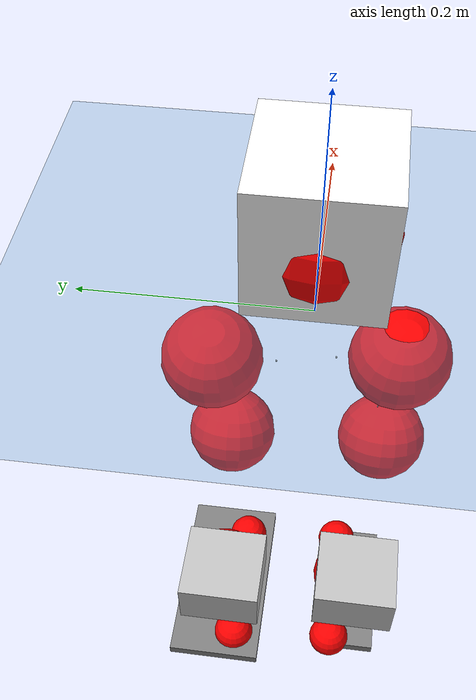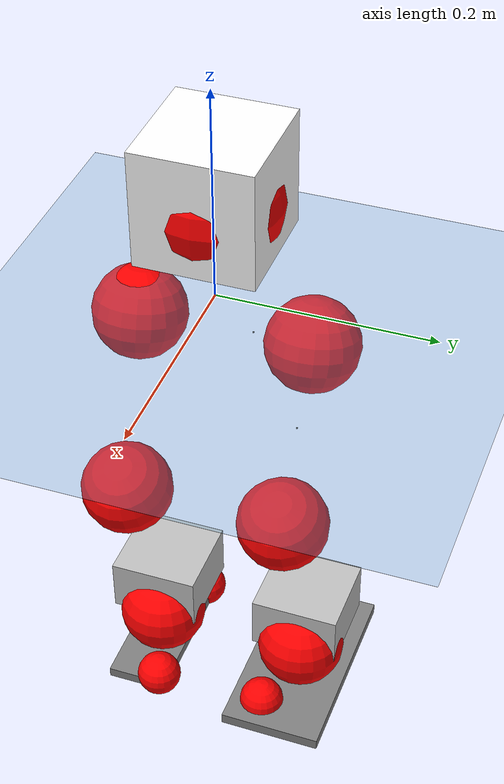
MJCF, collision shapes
<mujoco model="pi_12dof_release_v1">
  <compiler angle="radian" assetdir="assets" balanceinertia="true" inertiafromgeom="false"/>

  <option timestep="0.005" density="1.2" viscosity="2e-05"/>

  <size nkey="1"/>

  <visual>
    <quality shadowsize="8192"/>
    <map shadowclip="0.5"/>
  </visual>

  <default>
    <default class="/">
      <joint armature="0.01" damping="0.01" frictionloss="0.01"/>
      <geom contype="0" conaffinity="0" group="1" solref="-1000 -80"/>
      <site size="0.01 0.005 0.005" group="5"/>
      <general forcelimited="true" biastype="affine" gainprm="20" biasprm="0 -20 -0.5"/>
      <default class="foot">
        <geom size="0.0845 0.036 0.005" type="box" condim="6" group="4" priority="1" friction="0.9 0.2 0.2" solimp="0.015 1 0.005"/>
      </default>
      <default class="reward_collision_sphere">
        <geom group="5" rgba="1 0 0 1"/>
      </default>
    </default>
  </default>

  <asset>
    <texture type="skybox" colorspace="auto" name="//unnamed_texture_0" builtin="gradient" rgb1="0.95 0.95 0.95" rgb2="0.95 0.95 0.95" width="100" height="600"/>
    <texture type="2d" colorspace="auto" name="texplane" builtin="checker" rgb1="0.345 0.575 0.748" rgb2="0.345 0.575 0.748" markrgb="1 1 1" width="512" height="512"/>
    <material name="MatPlane" class="/" texture="texplane" texuniform="true" texrepeat="2 2" specular="0.9"/>
    <mesh name="baselink_1" class="/" file="baselink_1.STL"/>
    <mesh name="r_hip_pitch_link" class="/" file="r_hip_pitch_link.STL"/>
    <mesh name="r_hip_roll_link" class="/" file="r_hip_roll_link.STL"/>
    <mesh name="r_thigh_link" class="/" file="r_thigh_link.STL"/>
    <mesh name="r_calf_link" class="/" file="r_calf_link.STL"/>
    <mesh name="r_ankle_pitch_link" class="/" file="r_ankle_pitch_link.STL"/>
    <mesh name="r_ankle_roll_link" class="/" file="r_ankle_roll_link.STL"/>
    <mesh name="l_hip_pitch_link" class="/" file="l_hip_pitch_link.STL"/>
    <mesh name="l_hip_roll_link" class="/" file="l_hip_roll_link.STL"/>
    <mesh name="l_thigh_link" class="/" file="l_thigh_link.STL"/>
    <mesh name="l_calf_link" class="/" file="l_calf_link.STL"/>
    <mesh name="l_ankle_pitch_link" class="/" file="l_ankle_pitch_link.STL"/>
    <mesh name="l_ankle_roll_link" class="/" file="l_ankle_roll_link.STL"/>
  </asset>

  <worldbody>
    <geom name="floor" class="/" size="100 100 0.125" type="plane" group="0" material="MatPlane"/>
    <light name="toplight_shadow" class="/" pos="0 0 5" dir="0.0990148 0.0990148 -0.990148" type="directional" ambient="0.04 0.04 0.04" diffuse="0.55 0.55 0.55" specular="0.12 0.12 0.12"/>
    <light name="toplight_fill" class="/" pos="0 0 5" dir="0.0990148 0.0990148 -0.990148" type="directional" castshadow="false" ambient="0.04 0.04 0.04" diffuse="0.3 0.3 0.3" specular="0.08 0.08 0.08"/>
    <body name="trunk" pos="-0.00688084 -0.000594271 -0.00201311" quat="1 0.000378705 -0.000331947 9.75983e-05">
      <inertial pos="0.00279454 -0.00345438 0.0531267" quat="0.698127 -0.000258287 0.00640695 0.715945" mass="2.86948" diaginertia="0.00716913 0.0071479 0.0168299"/>
      <joint name="//unnamed_joint_0" type="free"/>
      <geom name="//unnamed_geom_1" class="/" type="mesh" density="0" rgba="1 1 1 1" mesh="baselink_1"/>
      <geom name="//unnamed_geom_2" class="/" size="0.0546051 0.0546051 0.0546051" pos="0 0 0.106163" type="box" rgba="1 1 1 1"/>
      <geom name="//unnamed_geom_3" class="reward_collision_sphere" size="0.0600656" pos="0 0 0.0928931"/>
      <site name="imu" class="/" pos="0.00348064 -0.00950172 0.0417689" size="0.010921"/>
      <camera name="track" class="/" pos="0 -1.95516 0" quat="0.707107 0.707107 0 0" mode="trackcom"/>
      <camera name="ego_camera" class="/" pos="0.0728759 0 0.238868" quat="-0.5 -0.5 0.5 0.5"/>
      <body name="r_hip_pitch_link" pos="-0.00213014 -0.0208638 -0.0409061" quat="0.99218 0.00167762 -0.124777 -0.00248405">
        <inertial pos="0.00869297 -0.0535177 0.000202543" quat="-0.018126 0.706076 -0.02738 0.707375" mass="0.464139" diaginertia="9.04598e-05 9.03874e-05 0.000326352"/>
        <joint name="r_hip_pitch_joint" class="/" pos="0 0 0" axis="-0.0285497 -0.999592 0.000913756" range="-1.90376 1.17568" armature="0.0109756" damping="0" frictionloss="0.0107185"/>
        <geom name="//unnamed_geom_4" class="/" type="mesh" density="0" rgba="0.75294 0.75294 0.75294 1" mesh="r_hip_pitch_link"/>
        <geom name="//unnamed_geom_5" class="/" size="0.000546051 0.000546051 0.000546051" type="box" rgba="0.75294 0.75294 0.75294 1"/>
        <body name="r_hip_roll_link" pos="0.00369294 -0.0530178 0.00263858" quat="1 -9.71664e-05 0.000480461 -5.35061e-05">
          <inertial pos="-0.000703622 0.000440634 -0.07187" quat="0.707706 -0.0825099 -0.0763548 0.697506" mass="0.518208" diaginertia="0.000295194 0.00024753 0.000518799"/>
          <joint name="r_hip_roll_joint" class="/" pos="0 0 0" axis="-0.99957 -0.0217842 -0.0196352" range="-0.0767804 0.363504" armature="0.0102609" damping="0.0164161" frictionloss="0.0133438"/>
          <geom name="//unnamed_geom_6" class="/" type="mesh" density="0" rgba="0.75294 0.75294 0.75294 1" mesh="r_hip_roll_link"/>
          <geom name="//unnamed_geom_7" class="/" size="0.000546051 0.000546051 0.000546051" type="box" rgba="0.75294 0.75294 0.75294 1"/>
          <geom name="//unnamed_geom_8" class="reward_collision_sphere" size="0.043684"/>
          <body name="r_thigh_link" pos="-0.00285247 0.00942616 -0.0910455" quat="0.999998 -0.00012914 2.61801e-05 0.00217782">
            <inertial pos="-0.00153334 -0.000171688 -0.0624888" quat="0.760625 0.649002 0.0102148 -0.0118858" mass="0.135969" diaginertia="0.000110547 8.15505e-05 0.000246776"/>
            <joint name="r_thigh_joint" class="/" pos="0 0 0" axis="-0.00553683 0.0118772 -0.999914" stiffness="0.0429548" range="-0.388268 0.429687" armature="0.0111412" damping="0.0114243" frictionloss="0.0116989"/>
            <geom name="//unnamed_geom_9" class="/" type="mesh" density="0" rgba="0.75294 0.75294 0.75294 1" mesh="r_thigh_link"/>
            <geom name="//unnamed_geom_10" class="/" size="0.000546051 0.000546051 0.000546051" type="box" rgba="0.75294 0.75294 0.75294 1"/>
            <body name="r_calf_link" pos="0.00895808 -0.0112176 -0.0874393" quat="0.947653 7.48901e-05 0.319301 -0.00114407">
              <inertial pos="-0.00886782 -0.0002268 -0.0850918" quat="0.999933 0.010937 0.003621 -0.00097948" mass="0.974807" diaginertia="0.00267497 0.0029366 0.000649302"/>
              <joint name="r_calf_joint" class="/" pos="0 0 0" axis="0.0388389 -0.999232 -0.00527491" stiffness="0.00887452" range="-1.69375 0.655809" armature="0.00995908" damping="0" frictionloss="0.00998134"/>
              <geom name="//unnamed_geom_11" class="/" type="mesh" density="0" rgba="0.75294 0.75294 0.75294 1" mesh="r_calf_link"/>
              <geom name="//unnamed_geom_12" class="/" size="0.000546051 0.000546051 0.000546051" type="box" rgba="0.75294 0.75294 0.75294 1"/>
              <geom name="//unnamed_geom_13" class="reward_collision_sphere" size="0.043684"/>
              <body name="r_ankle_pitch_link" pos="0.00106531 0.00539669 -0.188869" quat="0.980065 7.29253e-05 -0.198677 9.60802e-05">
                <inertial pos="0.00653641 -0.00631641 0.000595342" quat="0.00358387 0.708155 -0.000115959 0.706048" mass="0.228742" diaginertia="0.000263274 0.000202511 0.00049375"/>
                <joint name="r_ankle_pitch_joint" class="/" pos="0 0 0" axis="-0.00991028 -0.999838 0.0150369" range="-1.31847 0.492161" armature="0.0139421" damping="0.00143624" frictionloss="0.0132795"/>
                <geom name="//unnamed_geom_14" class="/" type="mesh" density="0" rgba="0.75294 0.75294 0.75294 1" mesh="r_ankle_pitch_link"/>
                <geom name="//unnamed_geom_15" class="/" size="0.0425919 0.043684 0.0273025" type="box" rgba="0.75294 0.75294 0.75294 1"/>
                <body name="r_ankle_roll_link" pos="0.0750859 0.00332585 -0.00624066" quat="0.999991 -0.00191624 0.00356271 0.00159072">
                  <inertial pos="-0.0330055 0.00381101 -0.025136" quat="0.558026 0.430631 0.429032 0.564886" mass="0.709946" diaginertia="0.000934742 0.000828997 0.00101517"/>
                  <joint name="r_ankle_roll_joint" class="/" pos="0 0 0" axis="-0.99903 0.0297428 0.0324758" stiffness="0.0149642" range="-0.14585 0.117003" armature="0.0113754" damping="0" frictionloss="0.00994656"/>
                  <geom name="//unnamed_geom_16" class="/" type="mesh" density="0" rgba="0.75294 0.75294 0.75294 1" mesh="r_ankle_roll_link"/>
                  <geom name="//unnamed_geom_17" class="/" type="mesh" rgba="0.75294 0.75294 0.75294 1" mesh="r_ankle_roll_link"/>
                  <geom name="right_foot" class="foot" size="0.0757197 0.0300233 0.00507409" pos="-0.0495556 0 -0.0583899"/>
                  <geom name="//unnamed_geom_19" class="reward_collision_sphere" size="0.043684" pos="-0.0485839 0 -0.0265409"/>
                  <geom name="//unnamed_geom_20" class="reward_collision_sphere" size="0.021842" pos="0.0145752 0.0195516 -0.0530817"/>
                  <geom name="//unnamed_geom_21" class="reward_collision_sphere" size="0.021842" pos="-0.116601 0.0195516 -0.0530817"/>
                  <site name="right_foot" class="foot" pos="-0.0495556 0 -0.0583899" size="0.010921"/>
                </body>
              </body>
            </body>
          </body>
        </body>
      </body>
      <body name="l_hip_pitch_link" pos="-0.010219 0.0292042 -0.0437154" quat="0.992193 6.43306e-05 -0.124708 9.37219e-05">
        <inertial pos="-0.00715216 0.0626993 -0.000291114" quat="-0.0284318 0.727228 0.0268272 0.685281" mass="0.516586" diaginertia="0.000109773 9.28907e-05 0.000445606"/>
        <joint name="l_hip_pitch_joint" class="/" pos="0 0 0" axis="-0.0243439 0.998812 -0.0422069" stiffness="0.0357913" range="-1.09753 1.79584" armature="0.0152856" damping="0.0214728" frictionloss="0.00999315"/>
        <geom name="//unnamed_geom_22" class="/" type="mesh" density="0" rgba="0.75294 0.75294 0.75294 1" mesh="l_hip_pitch_link"/>
        <geom name="//unnamed_geom_23" class="/" size="0.000546051 0.000546051 0.000546051" type="box" rgba="0.75294 0.75294 0.75294 1"/>
        <body name="l_hip_roll_link" pos="-0.00241577 0.0546702 -0.000276481" quat="1 -0.000182034 4.32656e-06 7.7708e-05">
          <inertial pos="-0.000145157 -0.00807189 -0.0796944" quat="0.695341 -0.098293 -0.0683773 0.708635" mass="0.485887" diaginertia="0.000285837 0.000239885 0.000557184"/>
          <joint name="l_hip_roll_joint" class="/" pos="0 0 0" axis="-0.999936 -0.00912747 -0.00668054" stiffness="0.0161483" range="-0.544133 0.0806809" armature="0.00745385" damping="0.0197719" frictionloss="0.0123761"/>
          <geom name="//unnamed_geom_24" class="/" type="mesh" density="0" rgba="0.75294 0.75294 0.75294 1" mesh="l_hip_roll_link"/>
          <geom name="//unnamed_geom_25" class="/" size="0.000546051 0.000546051 0.000546051" type="box" rgba="0.75294 0.75294 0.75294 1"/>
          <geom name="//unnamed_geom_26" class="reward_collision_sphere" size="0.043684"/>
          <body name="l_thigh_link" pos="0.00356203 -0.0058601 -0.0828554" quat="0.999989 -0.00208958 -0.00316416 -0.00259832">
            <inertial pos="0.00276722 -0.00190728 -0.0730976" quat="0.670045 0.742264 -0.00476416 0.00776284" mass="0.161118" diaginertia="0.000106864 8.64155e-05 0.000244297"/>
            <joint name="l_thigh_joint" class="/" pos="0 0 0" axis="6.10113e-05 4.0093e-05 -1" stiffness="0.0044179" range="-0.442409 0.242979" armature="0.0109142" damping="0.0290531" frictionloss="0.012029"/>
            <geom name="//unnamed_geom_27" class="/" type="mesh" density="0" rgba="0.75294 0.75294 0.75294 1" mesh="l_thigh_link"/>
            <geom name="//unnamed_geom_28" class="/" size="0.000546051 0.000546051 0.000546051" type="box" rgba="0.75294 0.75294 0.75294 1"/>
            <body name="l_calf_link" pos="0.00807601 -0.000956004 -0.0956659" quat="0.947629 -5.78422e-05 0.319374 1.38351e-05">
              <inertial pos="-0.00420662 0.00154417 -0.0937586" quat="0.999079 0.00215474 -0.0384638 0.0188948" mass="1.03333" diaginertia="0.00288882 0.00292452 0.000675501"/>
              <joint name="l_calf_joint" class="/" pos="0 0 0" axis="0.0255662 0.999443 0.021434" stiffness="0.00916893" range="-0.731704 1.63952" armature="0.0111133" damping="0.017185" frictionloss="0.0141741"/>
              <geom name="//unnamed_geom_29" class="/" type="mesh" density="0" rgba="0.75294 0.75294 0.75294 1" mesh="l_calf_link"/>
              <geom name="//unnamed_geom_30" class="/" size="0.000546051 0.000546051 0.000546051" type="box" rgba="0.75294 0.75294 0.75294 1"/>
              <geom name="//unnamed_geom_31" class="reward_collision_sphere" size="0.043684"/>
              <body name="l_ankle_pitch_link" pos="0.00216437 0.00237162 -0.192778" quat="0.980033 2.1867e-05 -0.198833 0.000109472">
                <inertial pos="0.00565482 -0.00273486 0.000327871" quat="-0.036628 0.725216 -0.0143628 0.687396" mass="0.228926" diaginertia="0.000263576 0.000185672 0.000439811"/>
                <joint name="l_ankle_pitch_joint" class="/" pos="0 0 0" axis="-0.000234144 1 0.000752259" range="-0.583324 1.23409" armature="0.010554" damping="0.0307828" frictionloss="0.0117364"/>
                <geom name="//unnamed_geom_32" class="/" type="mesh" density="0" rgba="0.75294 0.75294 0.75294 1" mesh="l_ankle_pitch_link"/>
                <geom name="//unnamed_geom_33" class="/" size="0.0425919 0.043684 0.0273025" type="box" rgba="0.75294 0.75294 0.75294 1"/>
                <body name="l_ankle_roll_link" pos="0.0755944 0.00325447 -0.000491162" quat="1 -0.00039746 0.000103243 0.000604534">
                  <inertial pos="-0.0165018 0.00894609 -0.027111" quat="0.566029 0.428018 0.437164 0.552538" mass="0.608507" diaginertia="0.00100047 0.000825965 0.00113071"/>
                  <joint name="l_ankle_roll_joint" class="/" pos="0 0 0" axis="-0.999997 0.000608451 -0.00232499" range="-0.133703 0.218786" armature="0.0120252" damping="0" frictionloss="0.00728666"/>
                  <geom name="//unnamed_geom_34" class="/" type="mesh" density="0" rgba="0.75294 0.75294 0.75294 1" mesh="l_ankle_roll_link"/>
                  <geom name="//unnamed_geom_35" class="/" type="mesh" rgba="0.75294 0.75294 0.75294 1" mesh="l_ankle_roll_link"/>
                  <geom name="left_foot" class="foot" size="0.0976084 0.049576 0.00550428" pos="-0.0495556 0 -0.0583899"/>
                  <geom name="//unnamed_geom_37" class="reward_collision_sphere" size="0.043684" pos="-0.0485839 0 -0.0265409"/>
                  <geom name="//unnamed_geom_38" class="reward_collision_sphere" size="0.021842" pos="0.0145752 -0.0195516 -0.0530817"/>
                  <geom name="//unnamed_geom_39" class="reward_collision_sphere" size="0.021842" pos="-0.116601 -0.0195516 -0.0530817"/>
                  <site name="left_foot" class="foot" pos="-0.0495556 0 -0.0583899" size="0.010921"/>
                </body>
              </body>
            </body>
          </body>
        </body>
      </body>
    </body>
  </worldbody>

  <contact>
    <pair class="/" geom1="floor" geom2="right_foot" name="//unnamed_contact_1"/>
    <pair class="/" geom1="floor" geom2="left_foot" name="//unnamed_contact_0"/>
  </contact>

  <actuator>
    <general name="r_hip_pitch_joint" class="/" joint="r_hip_pitch_joint" forcerange="-21.9438 21.9438" gainprm="22.9841" biasprm="0 -22.9841 -0.566098"/>
    <general name="r_hip_roll_joint" class="/" joint="r_hip_roll_joint" forcerange="-16.6832 16.6832" gainprm="22.9841" biasprm="0 -22.9841 -0.566098"/>
    <general name="r_thigh_joint" class="/" joint="r_thigh_joint" forcerange="-23.4755 23.4755" gainprm="22.9841" biasprm="0 -22.9841 -0.566098"/>
    <general name="r_calf_joint" class="/" joint="r_calf_joint" forcerange="-15.5461 15.5461" gainprm="22.9841" biasprm="0 -22.9841 -0.566098"/>
    <general name="r_ankle_pitch_joint" class="/" joint="r_ankle_pitch_joint" forcerange="-22.196 22.196" gainprm="22.9841" biasprm="0 -22.9841 -0.566098"/>
    <general name="r_ankle_roll_joint" class="/" joint="r_ankle_roll_joint" forcerange="-23.2012 23.2012" gainprm="22.9841" biasprm="0 -22.9841 -0.566098"/>
    <general name="l_hip_pitch_joint" class="/" joint="l_hip_pitch_joint" forcerange="-22.5942 22.5942" gainprm="22.9841" biasprm="0 -22.9841 -0.566098"/>
    <general name="l_hip_roll_joint" class="/" joint="l_hip_roll_joint" forcerange="-28.1159 28.1159" gainprm="22.9841" biasprm="0 -22.9841 -0.566098"/>
    <general name="l_thigh_joint" class="/" joint="l_thigh_joint" forcerange="-22.0838 22.0838" gainprm="22.9841" biasprm="0 -22.9841 -0.566098"/>
    <general name="l_calf_joint" class="/" joint="l_calf_joint" forcerange="-22.4274 22.4274" gainprm="22.9841" biasprm="0 -22.9841 -0.566098"/>
    <general name="l_ankle_pitch_joint" class="/" joint="l_ankle_pitch_joint" forcerange="-24.566 24.566" gainprm="22.9841" biasprm="0 -22.9841 -0.566098"/>
    <general name="l_ankle_roll_joint" class="/" joint="l_ankle_roll_joint" forcerange="-20.4366 20.4366" gainprm="22.9841" biasprm="0 -22.9841 -0.566098"/>
  </actuator>

  <sensor>
    <gyro site="imu" name="imu_angular_velocity"/>
    <velocimeter site="imu" name="imu_linear_velocity"/>
    <framelinvel objtype="site" objname="left_foot" name="left_foot_global_linear_velocity"/>
    <framelinvel objtype="site" objname="right_foot" name="right_foot_global_linear_velocity"/>
  </sensor>

  <keyframe>
    <key name="home" qpos="0 0 0.291 1 0 0 0 0.4 0 0 -0.8 0.4 0 -0.4 0 0 0.8 -0.4 0"/>
  </keyframe>
</mujoco>
